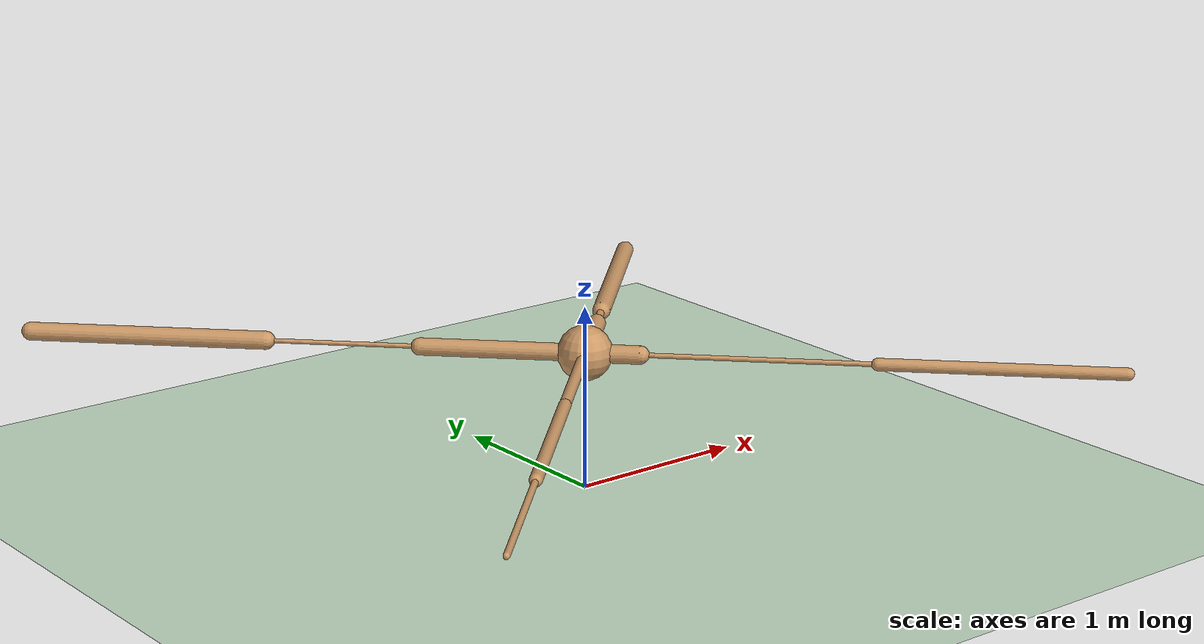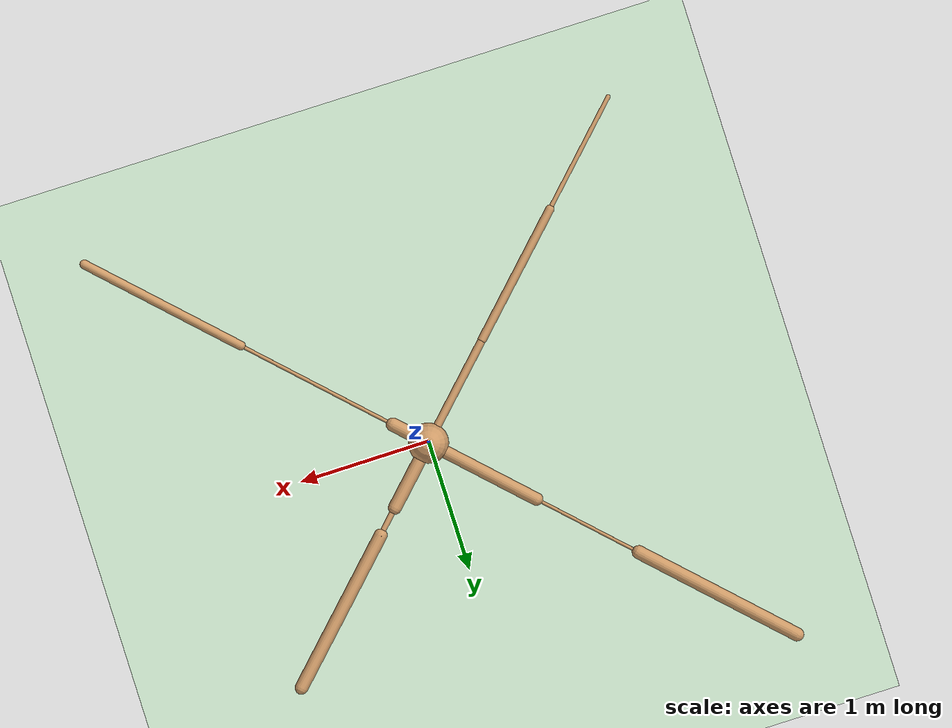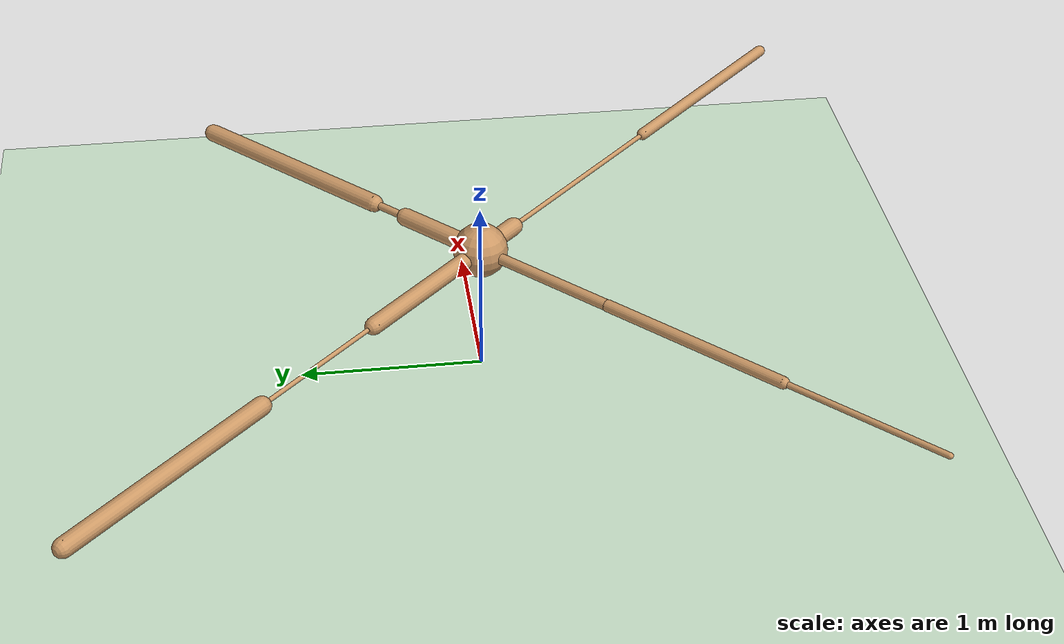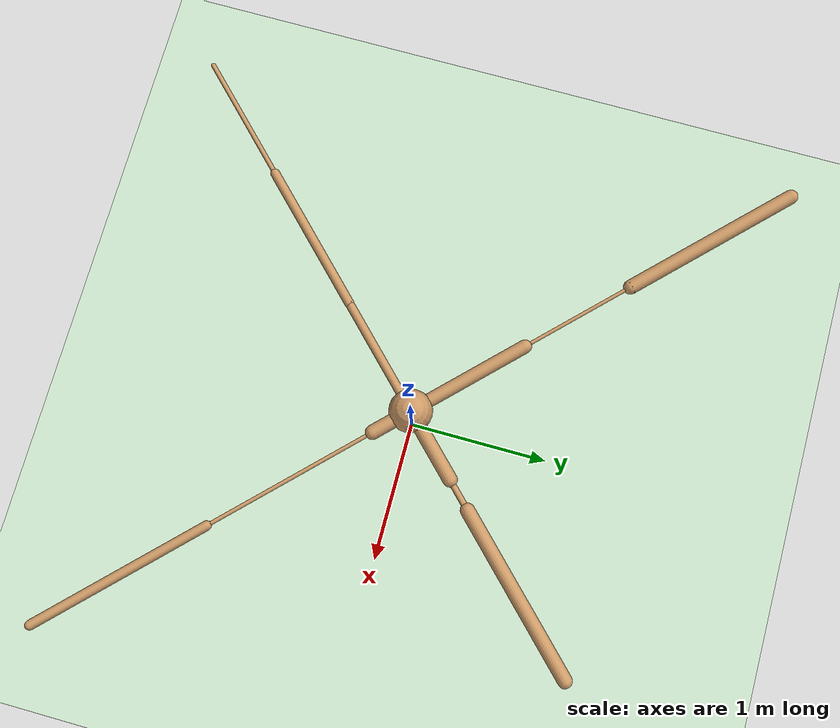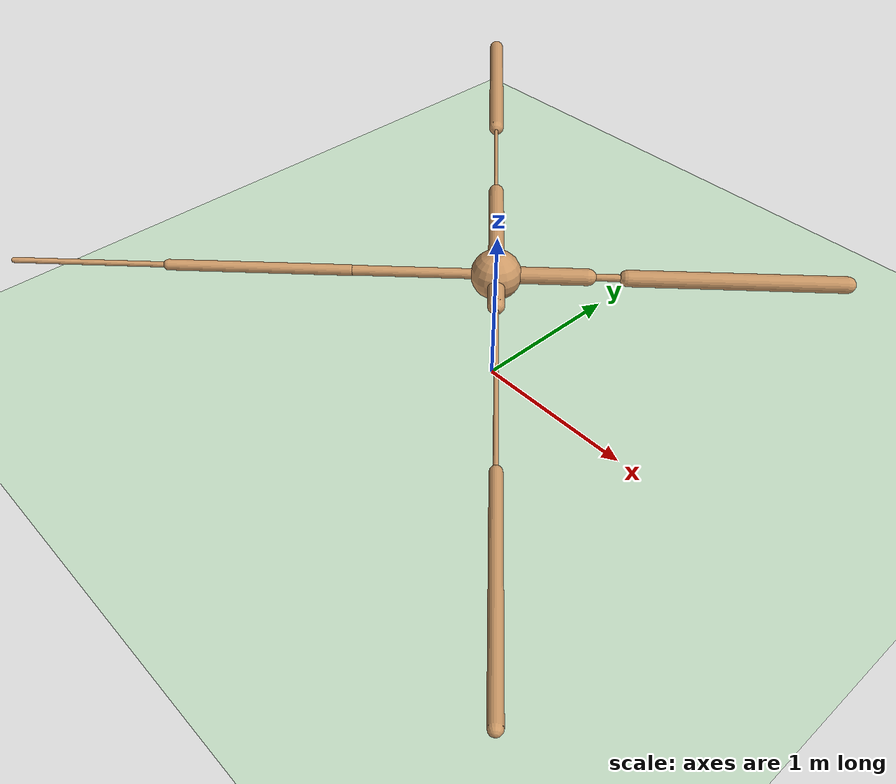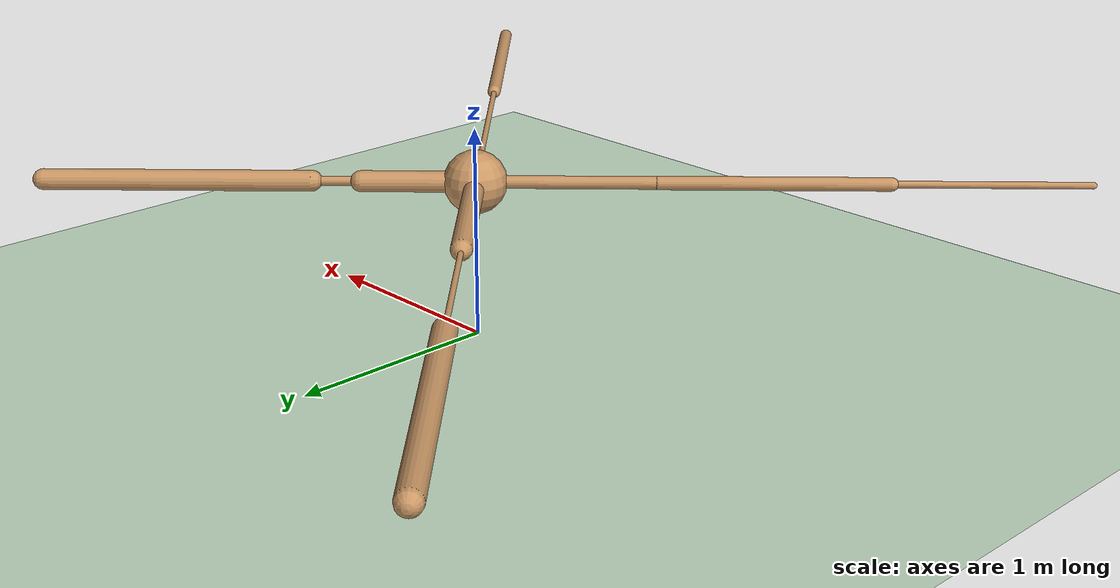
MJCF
<mujoco model="ant">
  <compiler angle="degree" coordinate="local" inertiafromgeom="true" />
  <option integrator="RK4" timestep="0.01" />
  <custom>
    <numeric data="0.0 0.0 0.55 1.0 0.0 0.0 0.0 0.0 1.0 0.0 -1.0 0.0 -1.0 0.0 1.0" name="init_qpos" />
  </custom>
  <default>
    <joint armature="1" damping="1" limited="true" />
    <geom conaffinity="0" condim="3" density="5.0" friction="1 0.5 0.5" margin="0.01" rgba="0.8 0.6 0.4 1" />
  </default>
  <asset>
    <texture builtin="gradient" height="100" rgb1="1 1 1" rgb2="0 0 0" type="skybox" width="100" />
    <texture builtin="flat" height="1278" mark="cross" markrgb="1 1 1" name="texgeom" random="0.01" rgb1="0.8 0.6 0.4" rgb2="0.8 0.6 0.4" type="cube" width="127" />
    <texture builtin="checker" height="100" name="texplane" rgb1="0 0 0" rgb2="0.8 0.8 0.8" type="2d" width="100" />
    <material name="MatPlane" reflectance="0.5" shininess="1" specular="1" texrepeat="60 60" texture="texplane" />
    <material name="geom" texture="texgeom" texuniform="true" />
  </asset>
  <worldbody>
    <light cutoff="100" diffuse="1 1 1" dir="-0 0 -1.3" directional="true" exponent="1" pos="0 0 1.3" specular=".1 .1 .1" />
    <geom conaffinity="1" condim="3" material="MatPlane" name="floor" pos="0 0 0" rgba="0.8 0.9 0.8 1" size="40 40 40" type="plane" />
    <body name="torso" pos="0 0 0.75">
      <camera name="track" mode="trackcom" pos="0 -11 5" xyaxes="1 0 0 0 0.5 1" />
      <geom name="torso_geom" pos="0 0 0" size="0.14787453413009644" type="sphere" />
      <joint armature="0" damping="0" limited="false" margin="0.01" name="root" pos="0 0 0" type="free" />
      <body name="front_left_leg" pos="0 0 0">
        <geom fromto="0 0 0 0.37116527557373047 0.37116527557373047 0" name="aux_1_geom" size="0.049499038606882095" type="capsule" />
        <body name="aux_1" pos="0.37116527557373047 0.37116527557373047 0">
          <joint axis="0 0 1" name="hip_1" pos="0.0 0.0 0.0" range="-30 30" type="hinge" />
          <geom fromto="0 0 0 0.1599230021238327 0.1599230021238327 0" name="left_leg_geom" size="0.021161627024412155" type="capsule" />
          <body name="left_leg_geom_aux" pos="0.1599230021238327 0.1599230021238327 0">
            <joint axis="-1 1 0" name="ankle_1" pos="0.0 0.0 0.0" range="30 70" type="hinge" />
            <geom fromto="0 0 0 0.8744451999664307 0.8744451999664307 0" name="left_ankle_geom" size="0.04905161261558533" type="capsule" />
          </body>
        </body>
      </body>
      <body name="front_right_leg" pos="0 0 0">
        <geom fromto="0 0 0 -0.6210850477218628 0.6210850477218628 0" name="aux_2_geom" size="0.04689289256930351" type="capsule" />
        <body name="aux_2" pos="-0.6210850477218628 0.6210850477218628 0">
          <joint axis="0 0 1" name="hip_2" pos="0.0 0.0 0.0" range="-30 30" type="hinge" />
          <geom fromto="0 0 0 -0.5864483714103699 0.5864483714103699 0" name="right_leg_geom" size="0.01216006837785244" type="capsule" />
          <body name="right_leg_geom_aux" pos="-0.5864483714103699 0.5864483714103699 0">
            <joint axis="1 1 0" name="ankle_2" pos="0.0 0.0 0.0" range="-70 -30" type="hinge" />
            <geom fromto="0 0 0 -0.9110199213027954 0.9110199213027954 0" name="right_ankle_geom" size="0.04957595840096474" type="capsule" />
          </body>
        </body>
      </body>
      <body name="back_leg" pos="0 0 0">
        <geom fromto="0 0 0 -0.5927478075027466 -0.5927478075027466 0" name="aux_3_geom" size="0.03015030361711979" type="capsule" />
        <body name="aux_3" pos="-0.5927478075027466 -0.5927478075027466 0">
          <joint axis="0 0 1" name="hip_3" pos="0.0 0.0 0.0" range="-30 30" type="hinge" />
          <geom fromto="0 0 0 -0.749695360660553 -0.749695360660553 0" name="back_leg_geom" size="0.03229643777012825" type="capsule" />
          <body name="back_leg_geom_aux" pos="-0.749695360660553 -0.749695360660553 0">
            <joint axis="-1 1 0" name="ankle_3" pos="0.0 0.0 0.0" range="-70 -30" type="hinge" />
            <geom fromto="0 0 0 -0.646746039390564 -0.646746039390564 0" name="third_ankle_geom" size="0.01639048010110855" type="capsule" />
          </body>
        </body>
      </body>
      <body name="right_back_leg" pos="0 0 0">
        <geom fromto="0 0 0 0.20468932390213013 -0.20468932390213013 0" name="aux_4_geom" size="0.04983193054795265" type="capsule" />
        <body name="aux_4" pos="0.20468932390213013 -0.20468932390213013 0">
          <joint axis="0 0 1" name="hip_4" pos="0.0 0.0 0.0" range="-30 30" type="hinge" />
          <geom fromto="0 0 0 0.8731179237365723 -0.8731179237365723 0" name="rightback_leg_geom" size="0.013227412477135658" type="capsule" />
          <body name="rightback_leg_geom_aux" pos="0.8731179237365723 -0.8731179237365723 0">
            <joint axis="1 1 0" name="ankle_4" pos="0.0 0.0 0.0" range="30 70" type="hinge" />
            <geom fromto="0 0 0 0.9003316760063171 -0.9003316760063171 0" name="fourth_ankle_geom" size="0.03354773670434952" type="capsule" />
          </body>
        </body>
      </body>
    </body>
  </worldbody>
  <actuator>
    <motor ctrllimited="true" ctrlrange="-1.0 1.0" joint="hip_4" gear="150" />
    <motor ctrllimited="true" ctrlrange="-1.0 1.0" joint="ankle_4" gear="150" />
    <motor ctrllimited="true" ctrlrange="-1.0 1.0" joint="hip_1" gear="150" />
    <motor ctrllimited="true" ctrlrange="-1.0 1.0" joint="ankle_1" gear="150" />
    <motor ctrllimited="true" ctrlrange="-1.0 1.0" joint="hip_2" gear="150" />
    <motor ctrllimited="true" ctrlrange="-1.0 1.0" joint="ankle_2" gear="150" />
    <motor ctrllimited="true" ctrlrange="-1.0 1.0" joint="hip_3" gear="150" />
    <motor ctrllimited="true" ctrlrange="-1.0 1.0" joint="ankle_3" gear="150" />
  </actuator>
</mujoco>
